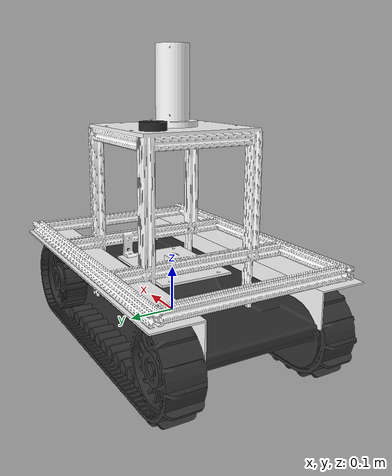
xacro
<?xml version="1.0"?>
<robot name="gvrbot" xmlns:xacro="http://www.ros.org/wiki/xacro">
    <xacro:include filename="$(find gvrbot)/models/urdf/inertial_tensors.urdf.xacro" />

  <xacro:property name="PI" value="3.1415926535897931" />

  <xacro:property name="wheelbase" value="0.262" />
  <xacro:property name="track" value="0.37559" />
  <xacro:property name="wheel_vertical_offset" value="0.03" />
  <xacro:property name="footprint_vertical_offset" value="-0.0655" />

  <xacro:property name="wheel_radius" value="0.098" />
  <xacro:property name="wheel_width" value="0.040" />

  <xacro:property name="chassis_length" value="0.680" />
  <xacro:property name="chassis_width" value="0.42" />
  <xacro:property name="chassis_height" value="0.178" />
  <xacro:property name="chassis_mass" value="10.89" />

  <xacro:property name="dummy_inertia" value="1e-09"/>

  <xacro:property name="mount_spacing" value="0.120" />

  <material name="dark_grey"><color rgba="0.2 0.2 0.2 1.0" /></material>
  <material name="light_grey"><color rgba="0.4 0.4 0.4 1.0" /></material>
  <material name="yellow"><color rgba="0.8 0.8 0.0 1.0" /></material>
  <material name="black"><color rgba="0.15 0.15 0.15 1.0" /></material>

  <xacro:macro name="wheel" params="prefix *joint_pose">

    <link name="${prefix}_wheel_link">
      <collision>
        <origin xyz="0 0 0" rpy="${PI/2} 0 0"/>
        <geometry>
          <cylinder radius="${wheel_radius}" length="${wheel_width}"/>
        </geometry>
      </collision>
      <inertial>
        <origin xyz="0 0 0" rpy="0 0 0"/>
        <mass value="0.477"/>
        <inertia
          ixx="0.0013" ixy="0" ixz="0"
          iyy="0.0024" iyz="0"
          izz="0.0013"/>
      </inertial>
    </link>

    <gazebo reference="${prefix}_wheel_link">
      <material>Gazebo/DarkGrey</material>
      <selfCollide>false</selfCollide>
      <mu1 value="0.5"/>
      <mu2 value="0.5"/>
      <kp value="10000000.0" />
      <kd value="1" />
      <fdir1 value="1 0 0"/>
    </gazebo>

    <joint name="${prefix}_wheel" type="continuous">
      <parent link="chassis_link"/>
      <child link="${prefix}_wheel_link" />
      <xacro:insert_block name="joint_pose" />
      <axis xyz="0 1 0" />
    </joint>

    <!-- In reality, gvrbot has only two motors, one per side. However, it's more
         straightforward for Gazebo to simulate as if there's an actuator per wheel. -->
    <transmission name="${prefix}_wheel_trans">
      <type>transmission_interface/SimpleTransmission</type>
      <joint name="${prefix}_wheel">
        <hardwareInterface>hardware_interface/VelocityJointInterface</hardwareInterface>
      </joint>
      <actuator name="${prefix}_actuator">
        <mechanicalReduction>1</mechanicalReduction>
      </actuator>
    </transmission>
  </xacro:macro>

  <xacro:wheel prefix="front_left">
    <origin xyz="${wheelbase/2} ${track/2} ${wheel_vertical_offset}" rpy="0 0 0" />
  </xacro:wheel>
  <xacro:wheel prefix="front_right">
    <origin xyz="${wheelbase/2} ${-track/2} ${wheel_vertical_offset}" rpy="0 0 0" />
  </xacro:wheel>
  <xacro:wheel prefix="rear_left">
    <origin xyz="${-wheelbase/2} ${track/2} ${wheel_vertical_offset}" rpy="0 0 0" />
  </xacro:wheel>
  <xacro:wheel prefix="rear_right">
    <origin xyz="${-wheelbase/2} ${-track/2} ${wheel_vertical_offset}" rpy="0 0 0" />
  </xacro:wheel>

  <link name="base_link"></link>

  <joint name="base_link_joint" type="fixed">
    <origin xyz="0 0 0" rpy="0 0 0" />
    <parent link="base_link"/>
    <child link="chassis_link" />
  </joint>

  <link name="chassis_link">
    <visual>
      <origin xyz="0.35 0 ${footprint_vertical_offset}" rpy="${PI} ${PI} -${PI/2}"/>
      <geometry>
        <mesh filename="package://gvrbot/models/meshes/gvrbot_base.STL"/>
      </geometry>
      <material name="dark_grey" />
    </visual>
    <collision>
            <origin xyz="0.35 0 ${footprint_vertical_offset}" rpy="${PI} ${PI} -${PI/2}"/>
      <geometry>
        <mesh filename="package://gvrbot/models/meshes/gvrbot_base.STL"/>
      </geometry>
    </collision>
    <inertial>
      <!-- Center of mass -->
        <origin xyz="-0.005 0 0.03" rpy="0 0 0" />
        <mass value="${chassis_mass}"/>
      <!-- Moments of inertia: ( chassis without wheels ) -->
      <box_inertia x="${chassis_length}" y="${chassis_width}" z="${chassis_height}" mass="${chassis_mass}" />
    </inertial>
  </link>

  <link name="imu_link">
    <inertial>
      <mass value="0.001"/>
      <origin xyz="0 0 0" rpy="0 0 0"/>
      <inertia ixx="${dummy_inertia}" ixy="0.0" ixz="0.0" iyy="${dummy_inertia}" iyz="0.0" izz="${dummy_inertia}"/>
    </inertial>
  </link>
  <joint name="imu_joint" type="fixed">
    <parent link="chassis_link" />
    <child link="imu_link" />
  </joint>

  <!-- TODO: Same note as applies to imu_link -->
  <link name="navsat_link">
    <visual>
      <geometry>
        <cylinder radius="0.026" length="0.016" />
      </geometry>
      <origin xyz="0.08 -0.03 0.235" />
      <material name="black" />
    </visual>
  </link>
  <joint name="navsat_joint" type="fixed">
    <parent link="chassis_link" />
    <child link="navsat_link" />
    <origin xyz="-0.180 0.126 0.1815" />
  </joint>

  <link name="mid_mount"></link>
  <joint name="mid_mount_joint" type="fixed">
    <parent link="chassis_link" />
    <child link="mid_mount" />
    <origin xyz="0 0 ${chassis_height}" />
  </joint>

  <link name="rear_mount"></link>
  <joint name="rear_mount_joint" type="fixed">
    <parent link="mid_mount" />
    <child link="rear_mount" />
    <origin xyz="${-mount_spacing} 0 0" />
  </joint>

  <link name="front_mount"></link>
  <joint name="front_mount_joint" type="fixed">
    <parent link="mid_mount" />
    <child link="front_mount" />
    <origin xyz="${mount_spacing} 0 0" />
  </joint>

  <!-- Bring in simulation data for Gazebo. -->
  <xacro:include filename="$(find gvrbot)/models/urdf/gvrbot.gazebo" />

  <!-- Add 8020 Frame. -->
    <xacro:include filename="$(find gvrbot)/models/urdf/frame_8020.urdf.xacro" />
    <frame_8020 parent="base_link" offset_x="-0.315" offset_y="-0.1389" offset_z="-0.01"/>

</robot>

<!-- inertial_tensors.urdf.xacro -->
<robot xmlns:xacro="http://www.ros.org/wiki/xacro">

  <xacro:macro name="rectangular_prism_tensor" params="mass len_x len_y len_z">
    <inertia   ixx="${ mass / 3 * ( len_y * len_y + len_z * len_z ) }" ixy="${ mass / 4 * len_x * len_y }" ixz="${ mass / 4 * len_x * len_z }"
               iyy="${ mass / 3 * ( len_y * len_y + len_z * len_z ) }" iyz="${ mass / 4 * len_y * len_z }"
               izz="${ mass / 3 * ( len_y * len_y + len_z * len_z ) }" />
  </xacro:macro>

  <!-- Z axis through the center of top and bottom  -->
  <xacro:macro name="cylinder_tensor" params="mass radius height">
    <inertia   ixx="${ mass / 12 * height * height + mass / 4 * radius * radius }" ixy="0.0" ixz="0.0"
               iyy="${ mass / 12 * height * height + mass / 4 * radius * radius }" iyz="0.0"
               izz="${ mass / 2 * radius * radius }" />
  </xacro:macro>

  <xacro:macro name="box_inertia" params="x y z mass">
      <inertia ixx="${0.0833333 * mass * (y*y + z*z)}" ixy="0.0" ixz="0.0"
        iyy="${0.0833333 * mass * (x*x + z*z)}" iyz="0.0"
        izz="${0.0833333 * mass * (x*x + y*y)}" />
  </xacro:macro>

  <xacro:macro name="cylinder_inertial" params="radius length mass">
    <inertial>
      <mass value="${mass}" />
      <origin xyz="0 0 0" />
      <inertia ixx="${0.0833333 * mass * (3 * radius * radius + length * length)}" ixy="0.0" ixz="0.0"
        iyy="${0.0833333 * mass * (3 * radius * radius + length * length)}" iyz="0.0"
        izz="${0.5 * mass * radius * radius}" />
    </inertial>
  </xacro:macro>

</robot>

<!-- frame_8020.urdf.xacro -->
<robot xmlns:xacro="http://www.ros.org/wiki/xacro">

    <xacro:include filename="$(find gvrbot)/models/urdf/inertial_tensors.urdf.xacro" />

    <xacro:property name="frame_length" value="0.680" />
    <xacro:property name="frame_width" value="0.20" />
    <xacro:property name="frame_height" value="0.30" />
    <xacro:property name="frame_mass" value="2.89" />
    <xacro:property name="M_PI" value="3.14159"/>

    <xacro:macro name="frame_8020" params="parent offset_x offset_y offset_z">
        <joint name="frame_8020_joint" type="fixed">
            <origin xyz="${offset_x} ${offset_y} ${offset_z}" rpy="0 0 ${PI/2}" />
            <parent link="${parent}" />
            <child link="frame8020_link" />
        </joint>

        <link name="frame8020_link">
            <inertial>
              <origin xyz="0.135 -0.315 0.2" rpy="${PI/2} 0 ${PI/2}" />
              <mass value="${frame_mass}" />
                <box_inertia x="${frame_length}" y="${frame_width}" z="${frame_height}" mass="${frame_mass}" />
            </inertial>
            <visual>
              <origin xyz="0 0 0" rpy="0 0 0" />
              <geometry>
                <mesh filename="package://gvrbot/models/meshes/frame_8020.STL" />
              </geometry>
              <material name="">
                <color rgba="1 1 1 1" />
              </material>
            </visual>
            <collision>
              <origin xyz="0 0 0" rpy="0 0 0" />
              <geometry>
                <mesh filename="package://gvrbot/models/meshes/frame_8020.STL" />
              </geometry>
            </collision>
        </link>
   </xacro:macro>

</robot>
